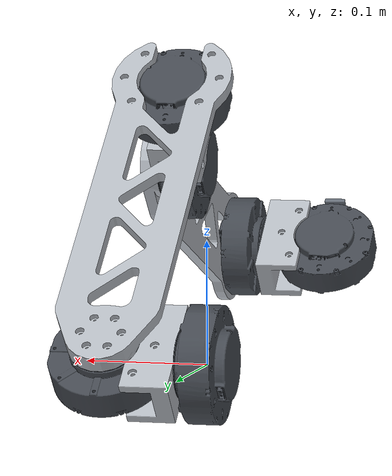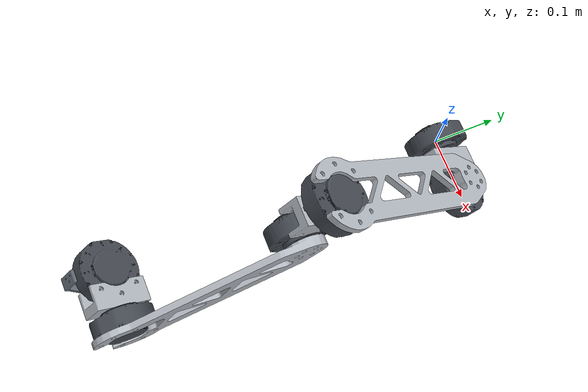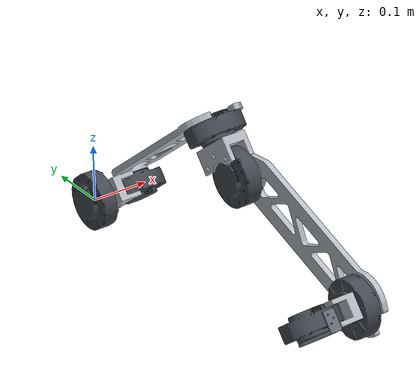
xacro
<?xml version="1.0"?>
<robot name="qmini_arm" xmlns:xacro="http://www.ros.org/wiki/xacro">
  <!--
    Generated from Qmini-arm.SLDASM.
    Joint zero matches the saved CAD pose. All meshes and dimensions use SI units.
  -->

  <xacro:property name="joint_limit" value="2.617993878"/>
  <xacro:property name="soft_joint_limit" value="2.530727415"/>
  <xacro:property name="effort_limit" value="23.7"/>
  <xacro:property name="velocity_limit" value="3.0"/>

  <material name="motor_gray">
    <color rgba="0.27 0.29 0.32 1.0"/>
  </material>
  <material name="link_silver">
    <color rgba="0.72 0.74 0.77 1.0"/>
  </material>
  <material name="tool_gray">
    <color rgba="0.40 0.43 0.47 1.0"/>
  </material>

  <xacro:macro name="inertial_block" params="mass xyz ixx ixy ixz iyy iyz izz">
    <inertial>
      <origin xyz="${xyz}" rpy="0 0 0"/>
      <mass value="${mass}"/>
      <inertia
        ixx="${ixx}" ixy="${ixy}" ixz="${ixz}"
        iyy="${iyy}" iyz="${iyz}" izz="${izz}"/>
    </inertial>
  </xacro:macro>

  <xacro:macro name="mesh_visual" params="file xyz rpy material">
    <visual>
      <origin xyz="${xyz}" rpy="${rpy}"/>
      <geometry>
        <mesh filename="package://qmini_arm_description/meshes/visual/${file}"/>
      </geometry>
      <material name="${material}"/>
    </visual>
  </xacro:macro>

  <xacro:macro name="motor_collision" params="xyz rpy">
    <collision>
      <origin xyz="${xyz}" rpy="${rpy}"/>
      <geometry>
        <cylinder radius="0.04825" length="0.0423"/>
      </geometry>
    </collision>
  </xacro:macro>

  <xacro:macro name="box_collision" params="xyz rpy size">
    <collision>
      <origin xyz="${xyz}" rpy="${rpy}"/>
      <geometry>
        <box size="${size}"/>
      </geometry>
    </collision>
  </xacro:macro>

  <xacro:macro name="arm_joint" params="name parent child xyz rpy">
    <joint name="${name}" type="revolute">
      <origin xyz="${xyz}" rpy="${rpy}"/>
      <parent link="${parent}"/>
      <child link="${child}"/>
      <axis xyz="1 0 0"/>
      <limit
        lower="${-joint_limit}" upper="${joint_limit}"
        effort="${effort_limit}" velocity="${velocity_limit}"/>
      <dynamics damping="0.08" friction="0.0"/>
      <safety_controller
        soft_lower_limit="${-soft_joint_limit}"
        soft_upper_limit="${soft_joint_limit}"
        k_position="20.0" k_velocity="2.0"/>
    </joint>
  </xacro:macro>

  <!-- Fixed GO-M8010-6 motor housing. -->
  <link name="base_link">
    <xacro:inertial_block
      mass="0.5" xyz="0.001694875 0.000113148 0.000030767"
      ixx="0.000552544" ixy="-0.000000706" ixz="-0.000000261"
      iyy="0.000317218" iyz="-0.000005587" izz="0.000316759"/>
    <xacro:mesh_visual
      file="motor.stl" xyz="0 0 0" rpy="0 0 0" material="motor_gray"/>
    <xacro:motor_collision xyz="0 0 0" rpy="0 1.570796327 0"/>
  </link>

  <!-- Output of motor 1: first orthogonal bracket and motor 2 housing. -->
  <link name="link_1">
    <xacro:inertial_block
      mass="0.585848904" xyz="0.075587838 0.000106623 0.000545006"
      ixx="0.000390445" ixy="-0.000002165" ixz="-0.000003570"
      iyy="0.000629433" iyz="0.000134515" izz="0.000673929"/>
    <xacro:mesh_visual
      file="joint_bracket.stl"
      xyz="0.021150004 -0.000400374 -0.000138396"
      rpy="0 -0.702123322 -1.570796327" material="link_silver"/>
    <xacro:mesh_visual
      file="motor.stl"
      xyz="0.082449884 -0.000852249 -0.000673012"
      rpy="2.297484930 -0.868673004 1.570796327" material="motor_gray"/>
    <xacro:box_collision
      xyz="0.041150004 -0.000400374 -0.000138396"
      rpy="0 -0.702123322 -1.570796327" size="0.09 0.04 0.043"/>
    <xacro:motor_collision
      xyz="0.082449884 -0.000852249 -0.000673012"
      rpy="0.563778620 -0.443490870 -2.545301700"/>
  </link>

  <!-- Output of motor 2: first long arm and motor 3 housing. -->
  <link name="link_2">
    <xacro:inertial_block
      mass="0.725038699" xyz="0.017320335 0.187087057 -0.166220843"
      ixx="0.007191282" ixy="0.000370476" ixz="-0.000328071"
      iyy="0.003329230" iyz="0.003102380" izz="0.004065040"/>
    <xacro:mesh_visual
      file="arm_link.stl"
      xyz="0.026150004 0.224214862 -0.199318093"
      rpy="3.141592654 0.726688605 1.570796327" material="link_silver"/>
    <xacro:mesh_visual
      file="motor.stl"
      xyz="0.013000008 0.224214994 -0.199318371"
      rpy="1.453370820 0 -3.141592654" material="motor_gray"/>
    <xacro:box_collision
      xyz="0.028650000 0.112108070 -0.099658330"
      rpy="3.141592654 0.726688605 1.570796327" size="0.3003 0.015 0.075"/>
    <xacro:motor_collision
      xyz="0.013000008 0.224214994 -0.199318371"
      rpy="1.570796327 0.117425510 -1.570796327"/>
  </link>

  <!-- Output of motor 3: second orthogonal bracket and motor 4 housing. -->
  <link name="link_3">
    <xacro:inertial_block
      mass="0.585848904" xyz="0.075420473 0.002699494 0.002954370"
      ixx="0.000391982" ixy="-0.000010197" ixz="-0.000011785"
      iyy="0.000634832" iyz="0.000134596" izz="0.000667344"/>
    <xacro:mesh_visual
      file="joint_bracket.stl"
      xyz="0.021150004 0.000000013 -0.000000002"
      rpy="0 -0.726682211 -1.570796327" material="link_silver"/>
    <xacro:mesh_visual
      file="motor.stl"
      xyz="0.082450124 0.001988742 0.002237564"
      rpy="-0.844107722 -0.844114116 1.570796327" material="motor_gray"/>
    <xacro:box_collision
      xyz="0.041150004 0.000000013 -0.000000002"
      rpy="0 -0.726682211 -1.570796327" size="0.09 0.04 0.043"/>
    <xacro:motor_collision
      xyz="0.082450124 0.001988742 0.002237564"
      rpy="-0.586424700 0.457182900 0.586433260"/>
  </link>

  <!-- Output of motor 4: second long arm and motor 5 housing. -->
  <link name="link_4">
    <xacro:inertial_block
      mass="0.725038699" xyz="0.017320335 -0.237495080 -0.078911412"
      ixx="0.007191282" ixy="-0.000469355" ixz="-0.000156809"
      iyy="0.001194371" iyz="-0.001869837" izz="0.006199898"/>
    <xacro:mesh_visual
      file="arm_link.stl"
      xyz="0.026150004 -0.284721942 -0.094516711"
      rpy="0 0.320515340 -1.570796327" material="link_silver"/>
    <xacro:mesh_visual
      file="motor.stl"
      xyz="0.013000008 -0.284722248 -0.094516687"
      rpy="-2.735419390 0 3.141592654" material="motor_gray"/>
    <xacro:box_collision
      xyz="0.028650000 -0.142360960 -0.047258360"
      rpy="0 0.320515340 -1.570796327" size="0.3003 0.015 0.075"/>
    <xacro:motor_collision
      xyz="0.013000008 -0.284722248 -0.094516687"
      rpy="-1.570796327 -1.164623060 1.570796327"/>
  </link>

  <!-- Output of motor 5: third orthogonal bracket and motor 6 housing. -->
  <link name="link_5">
    <xacro:inertial_block
      mass="0.585848904" xyz="0.075587838 -0.000319057 0.000788844"
      ixx="0.000390445" ixy="0.000001919" ixz="-0.000003708"
      iyy="0.000542190" iyz="-0.000081247" izz="0.000761172"/>
    <xacro:mesh_visual
      file="joint_bracket.stl"
      xyz="0.021150004 0.000000013 -0.000000002"
      rpy="0 0.320515340 -1.570796327" material="link_silver"/>
    <xacro:mesh_visual
      file="motor.stl"
      xyz="0.082449884 0.000220822 -0.000664268"
      rpy="-0.844107722 -1.250280990 -1.570796327" material="motor_gray"/>
    <xacro:box_collision
      xyz="0.041150004 0.000000013 -0.000000002"
      rpy="0 0.320515340 -1.570796327" size="0.09 0.04 0.043"/>
    <xacro:motor_collision
      xyz="0.082449884 0.000220822 -0.000664268"
      rpy="-0.243190450 0.210882060 -2.440767920"/>
  </link>

  <!-- Output of motor 6: end-effector mounting bracket. -->
  <link name="link_6">
    <xacro:inertial_block
      mass="0.021258163" xyz="0.021297679 0.013029405 -0.011594202"
      ixx="0.000018357" ixy="-0.000001494" ixz="0.000001332"
      iyy="0.000009521" iyz="0.000005556" izz="0.000010847"/>
    <xacro:mesh_visual
      file="tool_mount.stl"
      xyz="0.026150004 0.000000013 -0.000000002"
      rpy="0 0.726688605 1.570796327" material="tool_gray"/>
    <xacro:box_collision
      xyz="0.008650000 0.011444880 -0.010174160"
      rpy="0 0.726688605 1.570796327" size="0.0894 0.035 0.059"/>
  </link>

  <link name="tool0"/>

  <xacro:arm_joint
    name="joint_1" parent="base_link" child="link_1"
    xyz="0 0 0" rpy="0 0 0"/>
  <xacro:arm_joint
    name="joint_2" parent="link_1" child="link_2"
    xyz="0.082449884 -0.000852249 -0.000673012"
    rpy="2.297484930 -0.868673004 1.570796327"/>
  <xacro:arm_joint
    name="joint_3" parent="link_2" child="link_3"
    xyz="0.013000008 0.224214994 -0.199318371"
    rpy="1.453370820 0 -3.141592654"/>
  <xacro:arm_joint
    name="joint_4" parent="link_3" child="link_4"
    xyz="0.082450124 0.001988742 0.002237564"
    rpy="-0.844107722 -0.844114116 1.570796327"/>
  <xacro:arm_joint
    name="joint_5" parent="link_4" child="link_5"
    xyz="0.013000008 -0.284722248 -0.094516687"
    rpy="-2.735419390 0 3.141592654"/>
  <xacro:arm_joint
    name="joint_6" parent="link_5" child="link_6"
    xyz="0.082449884 0.000220822 -0.000664268"
    rpy="-0.844107722 -1.250280990 -1.570796327"/>

  <joint name="tool0_fixed_joint" type="fixed">
    <origin
      xyz="0.008650004 0.044842728 -0.039863907"
      rpy="0 0.726688605 1.570796327"/>
    <parent link="link_6"/>
    <child link="tool0"/>
  </joint>
</robot>
